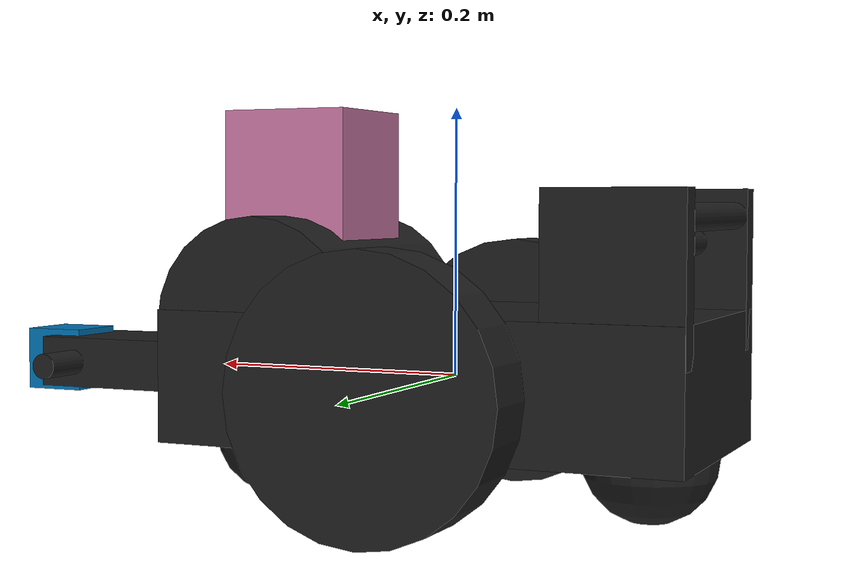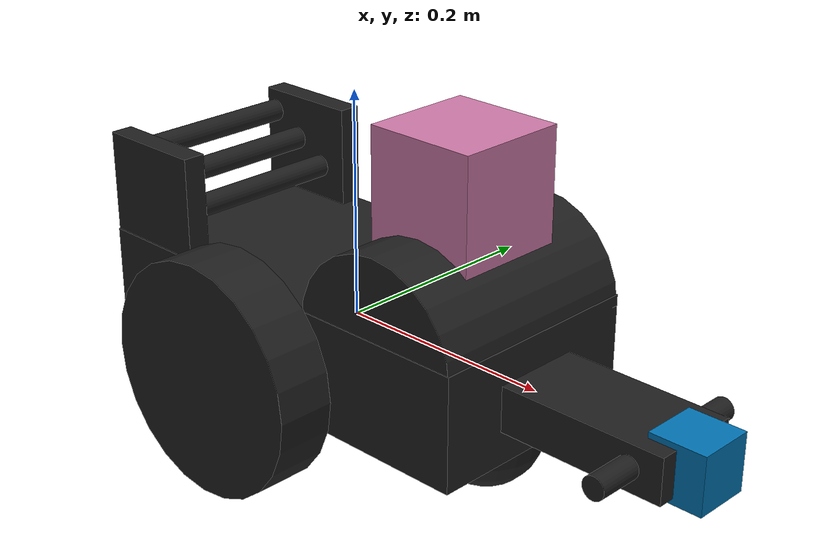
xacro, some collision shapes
<?xml version='1.0'?>

<robot name="udacity_bot" xmlns:xacro="http://www.ros.org/wiki/xacro">
  <xacro:include filename="$(find udacity_bot)/urdf/race_car.gazebo" />
  <link name="robot_footprint"></link>

  <joint name="robot_footprint_joint" type="fixed">
    <origin xyz="0 0 0" rpy="0 0 0" />
    <parent link="robot_footprint"/>
    <child link="chassis" />
  </joint>

  <link name='chassis'>
    <pose>0 0 0.1 0 0 0</pose>

    <inertial>
      <mass value="25.0"/>
      <origin xyz="0.0 0 0" rpy=" 0 0 0"/>
      <inertia
          ixx="0.1" ixy="0" ixz="0"
          iyy="0.1" iyz="0"
          izz="0.1"
      />
    </inertial>

    <collision name='chassis_collision'>
      <origin xyz="0 0 0" rpy=" 0 0 0"/>
      <geometry>
        <box size=".4 .2 .1"/>
      </geometry>
    </collision>

    <visual name='chassis_visual'>
      <origin xyz="0 0 0" rpy=" 0 0 0"/>
      <geometry>
        <box size=".4 .2 .1"/>
      </geometry>
    </visual>

    <collision name='front_chassis_collision'>
      <origin xyz="0.2 0 0" rpy=" 0 0 0"/>
      <geometry>
        <box size=".3 .08 .04"/>
      </geometry>
    </collision>

    <visual name='front_chassis_visual'>
      <origin xyz="0.2 0 0" rpy=" 0 0 0"/>
      <geometry>
        <box size=".3 .08 .04"/>
      </geometry>
    </visual>

    <collision name='driver_collision'>
      <origin xyz="0.12 0 0.04" rpy=" 0 1.5707 1.5707"/>
      <geometry>
        <cylinder radius=".08" length="0.199"/>
      </geometry>
    </collision>

    <visual name='driver_visual'>
      <origin xyz="0.12 0 0.04" rpy=" 0 1.5707 1.5707"/>
      <geometry>
        <cylinder radius=".08" length="0.199"/>
      </geometry>
    </visual>

    <collision name='connector_collision'>
      <origin xyz="0.32 0 0" rpy=" 0 1.5707 1.5707"/>
      <geometry>
        <cylinder radius=".01" length="0.16"/>
      </geometry>
    </collision>

    <visual name='connector_visual'>
      <origin xyz="0.32 0 0" rpy=" 0 1.5707 1.5707"/>
      <geometry>
        <cylinder radius=".01" length="0.16"/>
      </geometry>
    </visual>

    <collision name='back_caster_collision'>
      <origin xyz="-0.15 0 -0.05" rpy=" 0 0 0"/>
      <geometry>
        <sphere radius="0.0499"/>
      </geometry>
    </collision>

    <visual name='back_caster_visual'>
      <origin xyz="-0.15 0 -0.05" rpy=" 0 0 0"/>
      <geometry>
        <sphere radius="0.05"/>
      </geometry>
    </visual>

    <collision name='front_caster_collision'>
      <origin xyz="0.15 0 -0.05" rpy=" 0 0 0"/>
      <geometry>
        <sphere radius="0.0499"/>
      </geometry>
    </collision>

    <visual name='front_caster_visual'>
      <origin xyz="0.15 0 -0.05" rpy=" 0 0 0"/>
      <geometry>
        <sphere radius="0.05"/>
      </geometry>
    </visual>

    <visual name='back_left_shield_visual'>
      <origin xyz="-0.15 -0.089 0.08" rpy=" 0 0 0"/>
      <geometry>
        <box size=".1 .02 .12"/>
      </geometry>
    </visual>

    <visual name='back_right_shield_visual'>
      <origin xyz="-0.15 0.089 0.08" rpy=" 0 0 0"/>
      <geometry>
        <box size=".1 .02 .12"/>
      </geometry>
    </visual>

    <visual name='back_shield1_visual'>
      <origin xyz="-0.19 0.0 0.12" rpy=" 0 1.5707 1.5707"/>
      <geometry>
        <cylinder radius="0.01"  length="0.18"/>
      </geometry>
    </visual>

    <visual name='back_shield2_visual'>
      <origin xyz="-0.16 0.0 0.1" rpy=" 0 1.5707 1.5707"/>
      <geometry>
        <cylinder radius="0.01"  length="0.18"/>
      </geometry>
    </visual>

    <visual name='back_shield3_visual'>
      <origin xyz="-0.13 0.0 0.08" rpy=" 0 1.5707 1.5707"/>
      <geometry>
        <cylinder radius="0.01"  length="0.18"/>
      </geometry>
    </visual>

  </link>

  <link name="left_wheel">
    <inertial>
      <mass value="5.0"/>
      <origin xyz="0.0 0 0" rpy=" 0 1.5707 1.5707"/>
      <inertia
          ixx="0.1" ixy="0" ixz="0"
          iyy="0.1" iyz="0"
          izz="0.1"
      />
    </inertial>

    <collision name='collision'>
      <origin xyz="0.0 0 0" rpy=" 0 1.5707 1.5707"/>
      <geometry>
        <cylinder radius="0.1" length="0.05"/>
      </geometry>
    </collision>

    <visual name='left_wheel_visual'>
      <origin xyz="0.0 0 0" rpy=" 0 1.5707 1.5707"/>
      <geometry>
        <cylinder radius="0.1" length="0.05"/>
      </geometry>
    </visual>
  </link>

  <joint type="continuous" name="left_wheel_hinge">
    <origin xyz="0 0.15 0" rpy="0 0 0"/>
    <child link="left_wheel"/>
    <parent link="chassis"/>
    <axis xyz="0 1 0" rpy="0 0 0"/>
    <limit effort="10000" velocity="1000"/>
    <dynamics damping="1.0" friction="1.0"/>
  </joint>

  <link name="right_wheel">
    <inertial>
      <mass value="5.0"/>
      <origin xyz="0.0 0 0" rpy=" 0 1.5707 1.5707"/>
      <inertia
          ixx="0.1" ixy="0" ixz="0"
          iyy="0.1" iyz="0"
          izz="0.1"
      />
    </inertial>

    <collision name='collision'>
      <origin xyz="0.0 0 0" rpy=" 0 1.5707 1.5707"/>
      <geometry>
        <cylinder radius="0.1" length="0.05"/>
      </geometry>
    </collision>

    <visual name='right_wheel_visual'>
      <origin xyz="0.0 0 0" rpy=" 0 1.5707 1.5707"/>
      <geometry>
        <cylinder radius="0.1" length="0.05"/>
      </geometry>
    </visual>
  </link>

  <joint type="continuous" name="right_wheel_hinge">
    <origin xyz="0 -0.15 0" rpy="0 0 0"/>
    <child link="right_wheel"/>
    <parent link="chassis"/>
    <axis xyz="0 1 0" rpy="0 0 0"/>
    <limit effort="10000" velocity="1000"/>
    <dynamics damping="1.0" friction="1.0"/>
  </joint>

  <link name="camera">
    <inertial>
      <mass value="0.1"/>
      <origin xyz="0.0 0 0" rpy=" 0 0 0"/>
      <inertia
          ixx="1e-6" ixy="0" ixz="0"
          iyy="1e-6" iyz="0"
          izz="1e-6"
      />
    </inertial>

    <collision name='collision'>
      <origin xyz="0.0 0 0" rpy=" 0 0 0"/>
      <geometry>
        <box size="0.05 0.05 0.05"/>
      </geometry>
    </collision>

    <visual name='camera_visual'>
      <origin xyz="0.0 0 0" rpy=" 0 0 0"/>
      <geometry>
        <box size="0.05 0.05 0.05"/>
      </geometry>
    </visual>
  </link>

  <joint type="fixed" name="camera_joint">
    <origin xyz="0.35 0 0" rpy="0 0 0"/>
    <child link="camera"/>
    <parent link="chassis"/>
    <axis xyz="0 1 0" rpy="0 0 0"/>
    <limit effort="10000" velocity="1000"/>
    <dynamics damping="1.0" friction="1.0"/>
  </joint>

  <joint name="camera_rgbd_joint" type="fixed">
    <!-- these values have to be these values otherwise the gazebo camera
        image won't be aligned properly with the frame it is supposedly
        originating from -->
    <origin xyz="0 0 0" rpy="${-pi/2} 0 ${-pi/2}"/>
    <parent link="camera"/>
    <child link="camera_rgbd_frame"/>
  </joint>

  <link name="camera_rgbd_frame">
  </link>

  <link name="hokuyo">
    <inertial>
      <mass value="0.1"/>
      <origin xyz="0.0 0 0" rpy=" 0 0 0"/>
      <inertia
          ixx="1e-6" ixy="0" ixz="0"
          iyy="1e-6" iyz="0"
          izz="1e-6"
      />
    </inertial>

    <collision name='collision'>
      <origin xyz="0.0 0 0" rpy=" 0 0 0"/>
      <geometry>
        <box size="0.1 0.1 0.1"/>
      </geometry>
    </collision>

    <visual name='hokuyo_visual'>
      <origin xyz="0.0 0 0" rpy=" 0 0 0"/>
      <geometry>
        <mesh filename="package://udacity_bot/meshes/hokuyo.dae"/>
      </geometry>
    </visual>
  </link>

  <joint type="fixed" name="hokuyo_joint">
    <origin xyz="0.12 0 0.15" rpy="0 0 0"/>
    <child link="hokuyo"/>
    <parent link="chassis"/>
    <axis xyz="0 1 0" rpy="0 0 0"/>
    <limit effort="10000" velocity="1000"/>
    <dynamics damping="1.0" friction="1.0"/>
  </joint>
</robot>
